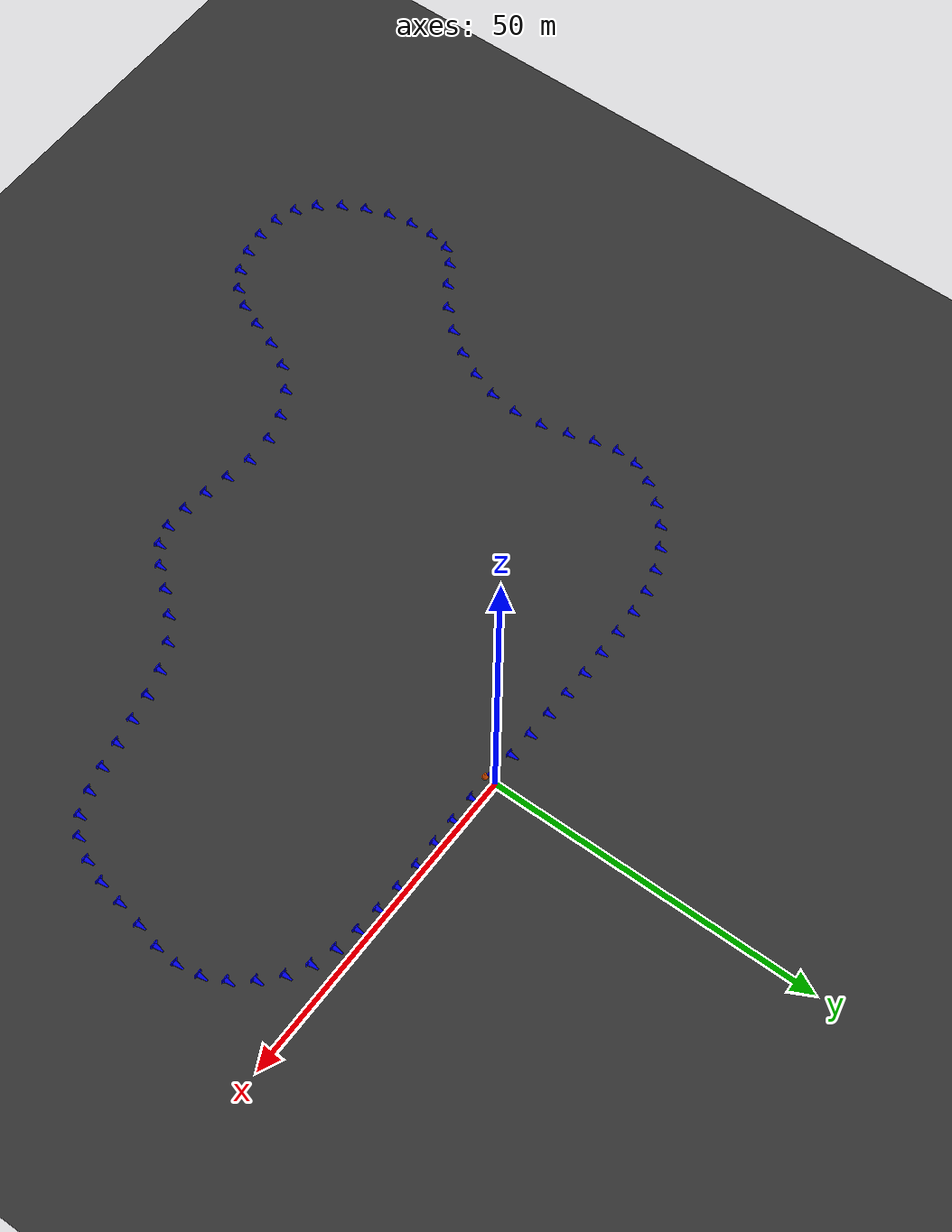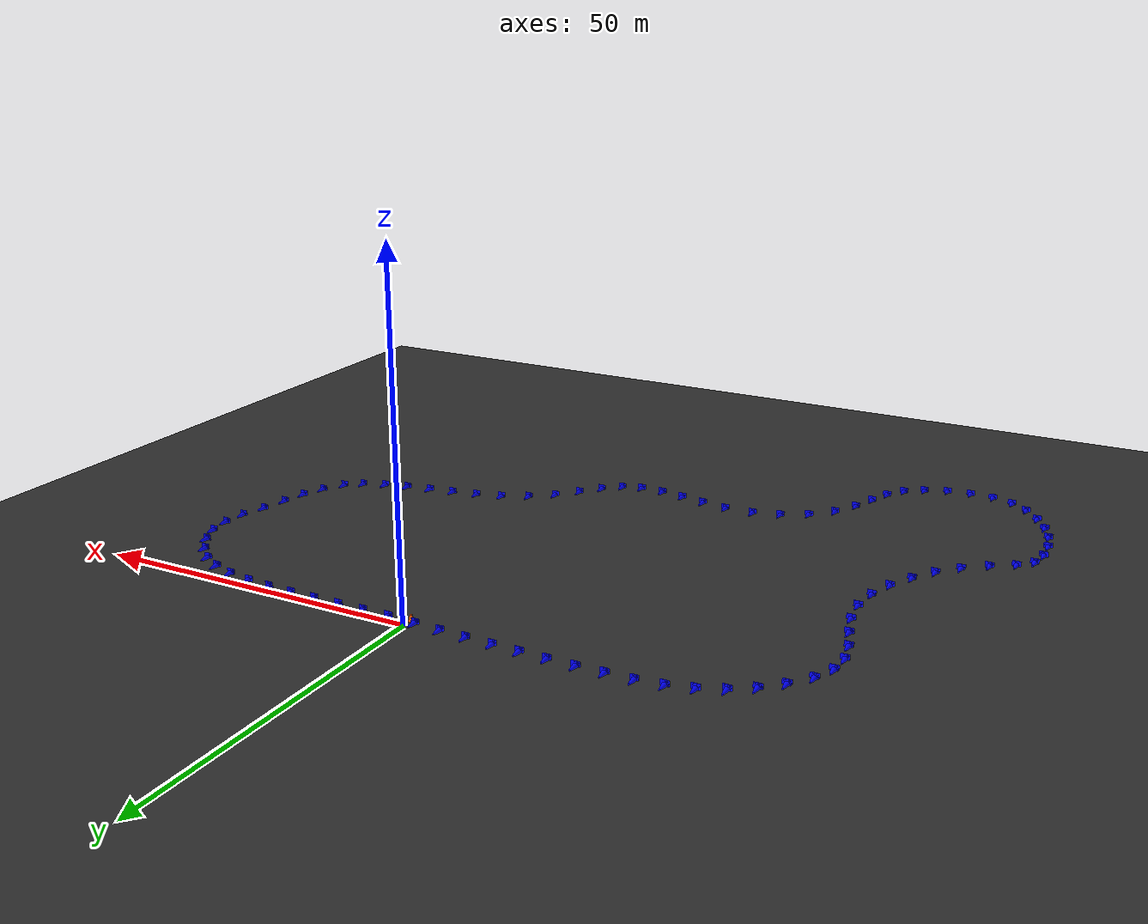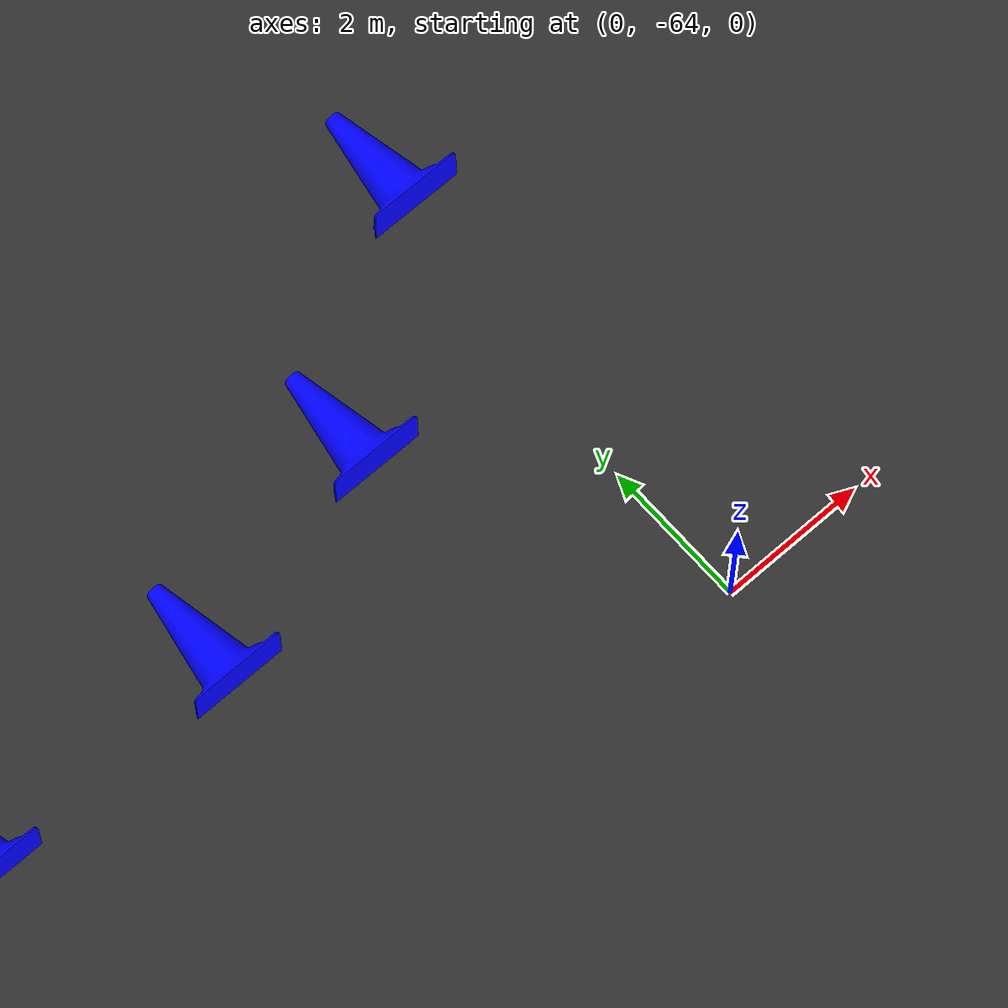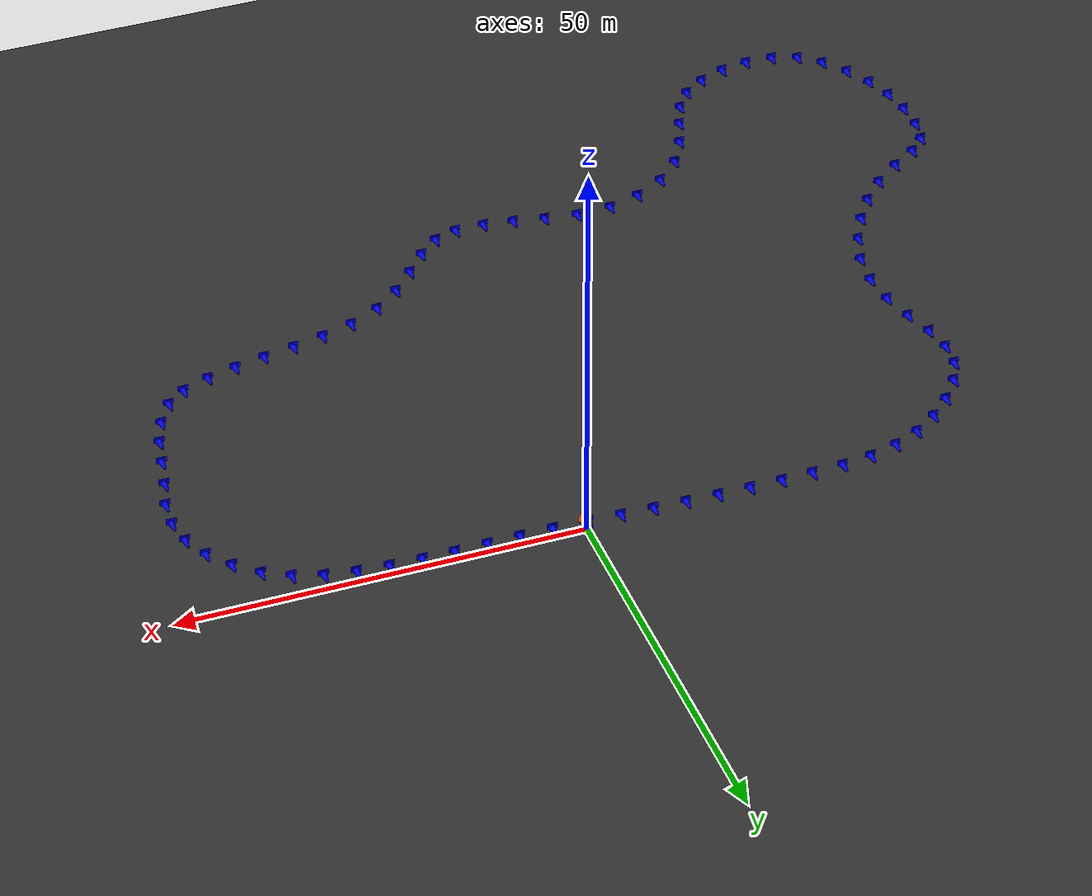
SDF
<sdf version="1.7">
 <world name="generated_world">
  <scene><sky><clouds><speed>12</speed></clouds></sky><grid>false</grid><shadows>1</shadows></scene>
  <physics type="ode">
   <max_step_size>0.001</max_step_size>
   <real_time_update_rate>1000</real_time_update_rate>
  </physics>
  <plugin filename="gz-sim-physics-system" name="gz::sim::systems::Physics"/>
  <plugin filename="gz-sim-user-commands-system" name="gz::sim::systems::UserCommands"/>
  <plugin filename="gz-sim-scene-broadcaster-system" name="gz::sim::systems::SceneBroadcaster"/>
  <plugin filename="gz-sim-contact-system" name="gz::sim::systems::Contact"/>
  <light name="sun" type="directional">
   <pose>0 0 10 0 0 0</pose>
   <diffuse>1 1 1 1</diffuse>
   <specular>0.2 0.2 0.2 1</specular>
   <direction>-0.5 0.2 -1</direction>
   <attenuation>
    <range>300</range>
    <constant>0.9</constant>
    <linear>0.01</linear>
    <quadratic>0.001</quadratic>
   </attenuation>
  </light>
  <model name="asphalt_ground">
   <static>1</static>
   <link name="link">
    <collision name="collision">
     <geometry><plane><normal>0 0 1</normal><size>300 300</size></plane></geometry>
     <surface><friction><ode><mu>100</mu><mu2>50</mu2></ode></friction></surface>
    </collision>
    <visual name="visual">
     <geometry><plane><normal>0 0 1</normal><size>300 300</size></plane></geometry>
     <material>
      <ambient>0.2 0.2 0.2 1</ambient>
      <diffuse>0.2 0.2 0.2 1</diffuse>
      <specular>0.1 0.1 0.1 1</specular>
     </material>
    </visual>
   </link>
  </model>
  <include><uri>model://cone_yellow</uri><name>cone_yellow_001</name><pose>3.652 1.924 0 0 0 0</pose></include>
  <include><uri>model://cone_yellow</uri><name>cone_yellow_002</name><pose>7.629 1.917 0 0 0 0</pose></include>
  <include><uri>model://cone_yellow</uri><name>cone_yellow_003</name><pose>11.625 1.952 0 0 0 0</pose></include>
  <include><uri>model://cone_yellow</uri><name>cone_yellow_004</name><pose>15.642 1.986 0 0 0 0</pose></include>
  <include><uri>model://cone_yellow</uri><name>cone_yellow_005</name><pose>19.684 1.963 0 0 0 0</pose></include>
  <include><uri>model://cone_yellow</uri><name>cone_yellow_006</name><pose>23.754 1.815 0 0 0 0</pose></include>
  <include><uri>model://cone_yellow</uri><name>cone_yellow_007</name><pose>27.854 1.445 0 0 0 0</pose></include>
  <include><uri>model://cone_yellow</uri><name>cone_yellow_008</name><pose>31.963 0.713 0 0 0 0</pose></include>
  <include>
   <uri>model://cone_yellow</uri>
   <name>cone_yellow_009</name>
   <pose>36.036 -0.588 0 0 0 0</pose>
  </include>
  <include>
   <uri>model://cone_yellow</uri>
   <name>cone_yellow_010</name>
   <pose>39.873 -2.700 0 0 0 0</pose>
  </include>
  <include>
   <uri>model://cone_yellow</uri>
   <name>cone_yellow_011</name>
   <pose>43.125 -5.626 0 0 0 0</pose>
  </include>
  <include>
   <uri>model://cone_yellow</uri>
   <name>cone_yellow_012</name>
   <pose>45.771 -9.038 0 0 0 0</pose>
  </include>
  <include>
   <uri>model://cone_yellow</uri>
   <name>cone_yellow_013</name>
   <pose>47.641 -13.033 0 0 0 0</pose>
  </include>
  <include>
   <uri>model://cone_yellow</uri>
   <name>cone_yellow_014</name>
   <pose>48.392 -17.434 0 0 0 0</pose>
  </include>
  <include>
   <uri>model://cone_yellow</uri>
   <name>cone_yellow_015</name>
   <pose>48.017 -21.802 0 0 0 0</pose>
  </include>
  <include>
   <uri>model://cone_yellow</uri>
   <name>cone_yellow_016</name>
   <pose>46.966 -25.795 0 0 0 0</pose>
  </include>
  <include>
   <uri>model://cone_yellow</uri>
   <name>cone_yellow_017</name>
   <pose>46.149 -29.564 0 0 0 0</pose>
  </include>
  <include>
   <uri>model://cone_yellow</uri>
   <name>cone_yellow_018</name>
   <pose>45.277 -33.598 0 0 0 0</pose>
  </include>
  <include>
   <uri>model://cone_yellow</uri>
   <name>cone_yellow_019</name>
   <pose>43.793 -37.652 0 0 0 0</pose>
  </include>
  <include>
   <uri>model://cone_yellow</uri>
   <name>cone_yellow_020</name>
   <pose>41.598 -41.347 0 0 0 0</pose>
  </include>
  <include>
   <uri>model://cone_yellow</uri>
   <name>cone_yellow_021</name>
   <pose>37.934 -44.355 0 0 0 0</pose>
  </include>
  <include>
   <uri>model://cone_yellow</uri>
   <name>cone_yellow_022</name>
   <pose>33.863 -45.938 0 0 0 0</pose>
  </include>
  <include>
   <uri>model://cone_yellow</uri>
   <name>cone_yellow_023</name>
   <pose>29.857 -46.933 0 0 0 0</pose>
  </include>
  <include>
   <uri>model://cone_yellow</uri>
   <name>cone_yellow_024</name>
   <pose>25.870 -47.703 0 0 0 0</pose>
  </include>
  <include>
   <uri>model://cone_yellow</uri>
   <name>cone_yellow_025</name>
   <pose>21.928 -48.417 0 0 0 0</pose>
  </include>
  <include>
   <uri>model://cone_yellow</uri>
   <name>cone_yellow_026</name>
   <pose>18.073 -49.209 0 0 0 0</pose>
  </include>
  <include>
   <uri>model://cone_yellow</uri>
   <name>cone_yellow_027</name>
   <pose>14.416 -50.241 0 0 0 0</pose>
  </include>
  <include>
   <uri>model://cone_yellow</uri>
   <name>cone_yellow_028</name>
   <pose>11.181 -51.786 0 0 0 0</pose>
  </include>
  <include>
   <uri>model://cone_yellow</uri>
   <name>cone_yellow_029</name>
   <pose>8.331 -54.049 0 0 0 0</pose>
  </include>
  <include>
   <uri>model://cone_yellow</uri>
   <name>cone_yellow_030</name>
   <pose>5.748 -56.854 0 0 0 0</pose>
  </include>
  <include>
   <uri>model://cone_yellow</uri>
   <name>cone_yellow_031</name>
   <pose>3.111 -59.956 0 0 0 0</pose>
  </include>
  <include>
   <uri>model://cone_yellow</uri>
   <name>cone_yellow_032</name>
   <pose>-0.276 -62.874 0 0 0 0</pose>
  </include>
  <include>
   <uri>model://cone_yellow</uri>
   <name>cone_yellow_033</name>
   <pose>-4.787 -64.365 0 0 0 0</pose>
  </include>
  <include>
   <uri>model://cone_yellow</uri>
   <name>cone_yellow_034</name>
   <pose>-9.115 -64.327 0 0 0 0</pose>
  </include>
  <include>
   <uri>model://cone_yellow</uri>
   <name>cone_yellow_035</name>
   <pose>-13.230 -63.705 0 0 0 0</pose>
  </include>
  <include>
   <uri>model://cone_yellow</uri>
   <name>cone_yellow_036</name>
   <pose>-17.165 -62.908 0 0 0 0</pose>
  </include>
  <include>
   <uri>model://cone_yellow</uri>
   <name>cone_yellow_037</name>
   <pose>-20.944 -62.311 0 0 0 0</pose>
  </include>
  <include>
   <uri>model://cone_yellow</uri>
   <name>cone_yellow_038</name>
   <pose>-24.433 -62.395 0 0 0 0</pose>
  </include>
  <include>
   <uri>model://cone_yellow</uri>
   <name>cone_yellow_039</name>
   <pose>-27.963 -63.388 0 0 0 0</pose>
  </include>
  <include>
   <uri>model://cone_yellow</uri>
   <name>cone_yellow_040</name>
   <pose>-31.055 -65.082 0 0 0 0</pose>
  </include>
  <include>
   <uri>model://cone_yellow</uri>
   <name>cone_yellow_041</name>
   <pose>-33.514 -67.540 0 0 0 0</pose>
  </include>
  <include>
   <uri>model://cone_yellow</uri>
   <name>cone_yellow_042</name>
   <pose>-35.276 -70.671 0 0 0 0</pose>
  </include>
  <include>
   <uri>model://cone_yellow</uri>
   <name>cone_yellow_043</name>
   <pose>-36.653 -74.300 0 0 0 0</pose>
  </include>
  <include>
   <uri>model://cone_yellow</uri>
   <name>cone_yellow_044</name>
   <pose>-38.279 -78.206 0 0 0 0</pose>
  </include>
  <include>
   <uri>model://cone_yellow</uri>
   <name>cone_yellow_045</name>
   <pose>-40.953 -81.861 0 0 0 0</pose>
  </include>
  <include>
   <uri>model://cone_yellow</uri>
   <name>cone_yellow_046</name>
   <pose>-44.646 -84.457 0 0 0 0</pose>
  </include>
  <include>
   <uri>model://cone_yellow</uri>
   <name>cone_yellow_047</name>
   <pose>-48.720 -86.004 0 0 0 0</pose>
  </include>
  <include>
   <uri>model://cone_yellow</uri>
   <name>cone_yellow_048</name>
   <pose>-53.001 -86.723 0 0 0 0</pose>
  </include>
  <include>
   <uri>model://cone_yellow</uri>
   <name>cone_yellow_049</name>
   <pose>-57.412 -86.499 0 0 0 0</pose>
  </include>
  <include>
   <uri>model://cone_yellow</uri>
   <name>cone_yellow_050</name>
   <pose>-61.706 -85.013 0 0 0 0</pose>
  </include>
  <include>
   <uri>model://cone_yellow</uri>
   <name>cone_yellow_051</name>
   <pose>-65.245 -82.108 0 0 0 0</pose>
  </include>
  <include>
   <uri>model://cone_yellow</uri>
   <name>cone_yellow_052</name>
   <pose>-67.822 -78.701 0 0 0 0</pose>
  </include>
  <include>
   <uri>model://cone_yellow</uri>
   <name>cone_yellow_053</name>
   <pose>-69.826 -74.926 0 0 0 0</pose>
  </include>
  <include>
   <uri>model://cone_yellow</uri>
   <name>cone_yellow_054</name>
   <pose>-71.206 -70.881 0 0 0 0</pose>
  </include>
  <include>
   <uri>model://cone_yellow</uri>
   <name>cone_yellow_055</name>
   <pose>-71.930 -66.673 0 0 0 0</pose>
  </include>
  <include>
   <uri>model://cone_yellow</uri>
   <name>cone_yellow_056</name>
   <pose>-71.989 -62.406 0 0 0 0</pose>
  </include>
  <include>
   <uri>model://cone_yellow</uri>
   <name>cone_yellow_057</name>
   <pose>-71.002 -57.839 0 0 0 0</pose>
  </include>
  <include>
   <uri>model://cone_yellow</uri>
   <name>cone_yellow_058</name>
   <pose>-67.750 -54.320 0 0 0 0</pose>
  </include>
  <include>
   <uri>model://cone_yellow</uri>
   <name>cone_yellow_059</name>
   <pose>-64.374 -52.143 0 0 0 0</pose>
  </include>
  <include>
   <uri>model://cone_yellow</uri>
   <name>cone_yellow_060</name>
   <pose>-61.411 -49.832 0 0 0 0</pose>
  </include>
  <include>
   <uri>model://cone_yellow</uri>
   <name>cone_yellow_061</name>
   <pose>-58.929 -47.133 0 0 0 0</pose>
  </include>
  <include>
   <uri>model://cone_yellow</uri>
   <name>cone_yellow_062</name>
   <pose>-56.823 -44.033 0 0 0 0</pose>
  </include>
  <include>
   <uri>model://cone_yellow</uri>
   <name>cone_yellow_063</name>
   <pose>-55.012 -40.551 0 0 0 0</pose>
  </include>
  <include>
   <uri>model://cone_yellow</uri>
   <name>cone_yellow_064</name>
   <pose>-53.829 -37.119 0 0 0 0</pose>
  </include>
  <include>
   <uri>model://cone_yellow</uri>
   <name>cone_yellow_065</name>
   <pose>-53.377 -33.541 0 0 0 0</pose>
  </include>
  <include>
   <uri>model://cone_yellow</uri>
   <name>cone_yellow_066</name>
   <pose>-53.711 -29.909 0 0 0 0</pose>
  </include>
  <include>
   <uri>model://cone_yellow</uri>
   <name>cone_yellow_067</name>
   <pose>-54.655 -26.220 0 0 0 0</pose>
  </include>
  <include>
   <uri>model://cone_yellow</uri>
   <name>cone_yellow_068</name>
   <pose>-55.826 -22.353 0 0 0 0</pose>
  </include>
  <include>
   <uri>model://cone_yellow</uri>
   <name>cone_yellow_069</name>
   <pose>-56.610 -18.094 0 0 0 0</pose>
  </include>
  <include>
   <uri>model://cone_yellow</uri>
   <name>cone_yellow_070</name>
   <pose>-56.173 -13.595 0 0 0 0</pose>
  </include>
  <include>
   <uri>model://cone_yellow</uri>
   <name>cone_yellow_071</name>
   <pose>-54.329 -9.536 0 0 0 0</pose>
  </include>
  <include>
   <uri>model://cone_yellow</uri>
   <name>cone_yellow_072</name>
   <pose>-51.590 -6.027 0 0 0 0</pose>
  </include>
  <include>
   <uri>model://cone_yellow</uri>
   <name>cone_yellow_073</name>
   <pose>-48.498 -3.112 0 0 0 0</pose>
  </include>
  <include>
   <uri>model://cone_yellow</uri>
   <name>cone_yellow_074</name>
   <pose>-44.954 -0.727 0 0 0 0</pose>
  </include>
  <include>
   <uri>model://cone_yellow</uri>
   <name>cone_yellow_075</name>
   <pose>-41.035 1.021 0 0 0 0</pose>
  </include>
  <include>
   <uri>model://cone_yellow</uri>
   <name>cone_yellow_076</name>
   <pose>-36.902 2.102 0 0 0 0</pose>
  </include>
  <include>
   <uri>model://cone_yellow</uri>
   <name>cone_yellow_077</name>
   <pose>-32.749 2.604 0 0 0 0</pose>
  </include>
  <include>
   <uri>model://cone_yellow</uri>
   <name>cone_yellow_078</name>
   <pose>-28.630 2.732 0 0 0 0</pose>
  </include>
  <include>
   <uri>model://cone_yellow</uri>
   <name>cone_yellow_079</name>
   <pose>-24.725 2.809 0 0 0 0</pose>
  </include>
  <include>
   <uri>model://cone_yellow</uri>
   <name>cone_yellow_080</name>
   <pose>-20.642 2.807 0 0 0 0</pose>
  </include>
  <include>
   <uri>model://cone_yellow</uri>
   <name>cone_yellow_081</name>
   <pose>-16.613 2.729 0 0 0 0</pose>
  </include>
  <include>
   <uri>model://cone_yellow</uri>
   <name>cone_yellow_082</name>
   <pose>-12.584 2.610 0 0 0 0</pose>
  </include>
  <include><uri>model://cone_yellow</uri><name>cone_yellow_083</name><pose>-8.563 2.462 0 0 0 0</pose></include>
  <include><uri>model://cone_yellow</uri><name>cone_yellow_084</name><pose>-4.525 2.289 0 0 0 0</pose></include>
  <include><uri>model://cone_yellow</uri><name>cone_yellow_085</name><pose>-0.503 2.090 0 0 0 0</pose></include>
  <include><uri>model://cone_blue</uri><name>cone_blue_001</name><pose>3.615 -1.576 0 0 0 0</pose></include>
  <include><uri>model://cone_blue</uri><name>cone_blue_002</name><pose>7.648 -1.583 0 0 0 0</pose></include>
  <include><uri>model://cone_blue</uri><name>cone_blue_003</name><pose>11.662 -1.547 0 0 0 0</pose></include>
  <include><uri>model://cone_blue</uri><name>cone_blue_004</name><pose>15.655 -1.514 0 0 0 0</pose></include>
  <include><uri>model://cone_blue</uri><name>cone_blue_005</name><pose>19.622 -1.536 0 0 0 0</pose></include>
  <include><uri>model://cone_blue</uri><name>cone_blue_006</name><pose>23.549 -1.679 0 0 0 0</pose></include>
  <include><uri>model://cone_blue</uri><name>cone_blue_007</name><pose>27.412 -2.027 0 0 0 0</pose></include>
  <include><uri>model://cone_blue</uri><name>cone_blue_008</name><pose>31.155 -2.693 0 0 0 0</pose></include>
  <include><uri>model://cone_blue</uri><name>cone_blue_009</name><pose>34.689 -3.819 0 0 0 0</pose></include>
  <include><uri>model://cone_blue</uri><name>cone_blue_010</name><pose>37.838 -5.547 0 0 0 0</pose></include>
  <include><uri>model://cone_blue</uri><name>cone_blue_011</name><pose>40.565 -8.013 0 0 0 0</pose></include>
  <include><uri>model://cone_blue</uri><name>cone_blue_012</name><pose>42.805 -10.896 0 0 0 0</pose></include>
  <include><uri>model://cone_blue</uri><name>cone_blue_013</name><pose>44.305 -14.093 0 0 0 0</pose></include>
  <include><uri>model://cone_blue</uri><name>cone_blue_014</name><pose>44.894 -17.549 0 0 0 0</pose></include>
  <include><uri>model://cone_blue</uri><name>cone_blue_015</name><pose>44.581 -21.135 0 0 0 0</pose></include>
  <include><uri>model://cone_blue</uri><name>cone_blue_016</name><pose>43.586 -24.886 0 0 0 0</pose></include>
  <include><uri>model://cone_blue</uri><name>cone_blue_017</name><pose>42.709 -28.914 0 0 0 0</pose></include>
  <include><uri>model://cone_blue</uri><name>cone_blue_018</name><pose>41.898 -32.686 0 0 0 0</pose></include>
  <include><uri>model://cone_blue</uri><name>cone_blue_019</name><pose>40.634 -36.144 0 0 0 0</pose></include>
  <include><uri>model://cone_blue</uri><name>cone_blue_020</name><pose>38.749 -39.315 0 0 0 0</pose></include>
  <include><uri>model://cone_blue</uri><name>cone_blue_021</name><pose>36.321 -41.249 0 0 0 0</pose></include>
  <include><uri>model://cone_blue</uri><name>cone_blue_022</name><pose>32.866 -42.583 0 0 0 0</pose></include>
  <include><uri>model://cone_blue</uri><name>cone_blue_023</name><pose>29.132 -43.509 0 0 0 0</pose></include>
  <include><uri>model://cone_blue</uri><name>cone_blue_024</name><pose>25.247 -44.259 0 0 0 0</pose></include>
  <include><uri>model://cone_blue</uri><name>cone_blue_025</name><pose>21.286 -44.976 0 0 0 0</pose></include>
  <include><uri>model://cone_blue</uri><name>cone_blue_026</name><pose>17.279 -45.800 0 0 0 0</pose></include>
  <include><uri>model://cone_blue</uri><name>cone_blue_027</name><pose>13.258 -46.938 0 0 0 0</pose></include>
  <include><uri>model://cone_blue</uri><name>cone_blue_028</name><pose>9.292 -48.840 0 0 0 0</pose></include>
  <include><uri>model://cone_blue</uri><name>cone_blue_029</name><pose>5.914 -51.517 0 0 0 0</pose></include>
  <include><uri>model://cone_blue</uri><name>cone_blue_030</name><pose>3.071 -54.599 0 0 0 0</pose></include>
  <include><uri>model://cone_blue</uri><name>cone_blue_031</name><pose>0.526 -57.595 0 0 0 0</pose></include>
  <include><uri>model://cone_blue</uri><name>cone_blue_032</name><pose>-2.103 -59.889 0 0 0 0</pose></include>
  <include><uri>model://cone_blue</uri><name>cone_blue_033</name><pose>-5.119 -60.881 0 0 0 0</pose></include>
  <include><uri>model://cone_blue</uri><name>cone_blue_034</name><pose>-8.779 -60.843 0 0 0 0</pose></include>
  <include><uri>model://cone_blue</uri><name>cone_blue_035</name><pose>-12.572 -60.268 0 0 0 0</pose></include>
  <include><uri>model://cone_blue</uri><name>cone_blue_036</name><pose>-16.486 -59.475 0 0 0 0</pose></include>
  <include><uri>model://cone_blue</uri><name>cone_blue_037</name><pose>-20.611 -58.826 0 0 0 0</pose></include>
  <include><uri>model://cone_blue</uri><name>cone_blue_038</name><pose>-25.080 -58.955 0 0 0 0</pose></include>
  <include><uri>model://cone_blue</uri><name>cone_blue_039</name><pose>-29.249 -60.133 0 0 0 0</pose></include>
  <include><uri>model://cone_blue</uri><name>cone_blue_040</name><pose>-33.140 -62.271 0 0 0 0</pose></include>
  <include><uri>model://cone_blue</uri><name>cone_blue_041</name><pose>-36.319 -65.447 0 0 0 0</pose></include>
  <include><uri>model://cone_blue</uri><name>cone_blue_042</name><pose>-38.486 -69.277 0 0 0 0</pose></include>
  <include><uri>model://cone_blue</uri><name>cone_blue_043</name><pose>-39.947 -73.118 0 0 0 0</pose></include>
  <include><uri>model://cone_blue</uri><name>cone_blue_044</name><pose>-41.384 -76.590 0 0 0 0</pose></include>
  <include><uri>model://cone_blue</uri><name>cone_blue_045</name><pose>-43.396 -79.355 0 0 0 0</pose></include>
  <include><uri>model://cone_blue</uri><name>cone_blue_046</name><pose>-46.229 -81.335 0 0 0 0</pose></include>
  <include><uri>model://cone_blue</uri><name>cone_blue_047</name><pose>-49.631 -82.625 0 0 0 0</pose></include>
  <include><uri>model://cone_blue</uri><name>cone_blue_048</name><pose>-53.230 -83.230 0 0 0 0</pose></include>
  <include><uri>model://cone_blue</uri><name>cone_blue_049</name><pose>-56.795 -83.053 0 0 0 0</pose></include>
  <include><uri>model://cone_blue</uri><name>cone_blue_050</name><pose>-60.021 -81.945 0 0 0 0</pose></include>
  <include><uri>model://cone_blue</uri><name>cone_blue_051</name><pose>-62.630 -79.781 0 0 0 0</pose></include>
  <include><uri>model://cone_blue</uri><name>cone_blue_052</name><pose>-64.871 -76.818 0 0 0 0</pose></include>
  <include><uri>model://cone_blue</uri><name>cone_blue_053</name><pose>-66.614 -73.536 0 0 0 0</pose></include>
  <include><uri>model://cone_blue</uri><name>cone_blue_054</name><pose>-67.814 -70.018 0 0 0 0</pose></include>
  <include><uri>model://cone_blue</uri><name>cone_blue_055</name><pose>-68.445 -66.352 0 0 0 0</pose></include>
  <include><uri>model://cone_blue</uri><name>cone_blue_056</name><pose>-68.496 -62.630 0 0 0 0</pose></include>
  <include><uri>model://cone_blue</uri><name>cone_blue_057</name><pose>-67.862 -59.386 0 0 0 0</pose></include>
  <include><uri>model://cone_blue</uri><name>cone_blue_058</name><pose>-65.752 -57.194 0 0 0 0</pose></include>
  <include><uri>model://cone_blue</uri><name>cone_blue_059</name><pose>-62.425 -55.050 0 0 0 0</pose></include>
  <include><uri>model://cone_blue</uri><name>cone_blue_060</name><pose>-59.039 -52.405 0 0 0 0</pose></include>
  <include><uri>model://cone_blue</uri><name>cone_blue_061</name><pose>-56.175 -49.293 0 0 0 0</pose></include>
  <include><uri>model://cone_blue</uri><name>cone_blue_062</name><pose>-53.811 -45.815 0 0 0 0</pose></include>
  <include><uri>model://cone_blue</uri><name>cone_blue_063</name><pose>-51.816 -41.979 0 0 0 0</pose></include>
  <include><uri>model://cone_blue</uri><name>cone_blue_064</name><pose>-50.425 -37.934 0 0 0 0</pose></include>
  <include><uri>model://cone_blue</uri><name>cone_blue_065</name><pose>-49.877 -33.588 0 0 0 0</pose></include>
  <include><uri>model://cone_blue</uri><name>cone_blue_066</name><pose>-50.272 -29.262 0 0 0 0</pose></include>
  <include><uri>model://cone_blue</uri><name>cone_blue_067</name><pose>-51.306 -25.204 0 0 0 0</pose></include>
  <include><uri>model://cone_blue</uri><name>cone_blue_068</name><pose>-52.451 -21.426 0 0 0 0</pose></include>
  <include><uri>model://cone_blue</uri><name>cone_blue_069</name><pose>-53.118 -17.859 0 0 0 0</pose></include>
  <include><uri>model://cone_blue</uri><name>cone_blue_070</name><pose>-52.799 -14.527 0 0 0 0</pose></include>
  <include><uri>model://cone_blue</uri><name>cone_blue_071</name><pose>-51.376 -11.415 0 0 0 0</pose></include>
  <include><uri>model://cone_blue</uri><name>cone_blue_072</name><pose>-49.005 -8.386 0 0 0 0</pose></include>
  <include><uri>model://cone_blue</uri><name>cone_blue_073</name><pose>-46.305 -5.840 0 0 0 0</pose></include>
  <include><uri>model://cone_blue</uri><name>cone_blue_074</name><pose>-43.257 -3.788 0 0 0 0</pose></include>
  <include><uri>model://cone_blue</uri><name>cone_blue_075</name><pose>-39.886 -2.285 0 0 0 0</pose></include>
  <include><uri>model://cone_blue</uri><name>cone_blue_076</name><pose>-36.271 -1.341 0 0 0 0</pose></include>
  <include><uri>model://cone_blue</uri><name>cone_blue_077</name><pose>-32.517 -0.889 0 0 0 0</pose></include>
  <include><uri>model://cone_blue</uri><name>cone_blue_078</name><pose>-28.598 -0.767 0 0 0 0</pose></include>
  <include><uri>model://cone_blue</uri><name>cone_blue_079</name><pose>-24.668 -0.691 0 0 0 0</pose></include>
  <include><uri>model://cone_blue</uri><name>cone_blue_080</name><pose>-20.685 -0.692 0 0 0 0</pose></include>
  <include><uri>model://cone_blue</uri><name>cone_blue_081</name><pose>-16.701 -0.770 0 0 0 0</pose></include>
  <include><uri>model://cone_blue</uri><name>cone_blue_082</name><pose>-12.701 -0.888 0 0 0 0</pose></include>
  <include><uri>model://cone_blue</uri><name>cone_blue_083</name><pose>-8.702 -1.035 0 0 0 0</pose></include>
  <include><uri>model://cone_blue</uri><name>cone_blue_084</name><pose>-4.685 -1.207 0 0 0 0</pose></include>
  <include><uri>model://cone_blue</uri><name>cone_blue_085</name><pose>-0.691 -1.404 0 0 0 0</pose></include>
  <include>
   <uri>model://cone_orange_big</uri>
   <name>cone_orange_big_001</name>
   <pose>0.000 -1.726 0 0 0 0</pose>
  </include>
  <include>
   <uri>model://cone_orange_big</uri>
   <name>cone_orange_big_002</name>
   <pose>0.000 1.726 0 0 0 0</pose>
  </include>
 </world>
</sdf>

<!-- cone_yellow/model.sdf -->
<sdf version="1.6">
  <model name="cone_yellow">
    <static>1</static>
    <link name="link">

      <visual name="visual">
        <pose>0 0 0 0 0 0</pose>
        <geometry>
          <mesh>
            <uri>model://cone_yellow/meshes/cone.stl</uri>
            <scale>0.005 0.005 0.005</scale>
          </mesh>
        </geometry>
        <material>
          <ambient>1.0 1.0 0.0 1</ambient>
          <diffuse>1.0 1.0 0.0 1</diffuse>
        </material>
      </visual>

      <collision name="collision">
        <pose>0 0 0.15 0 0 0</pose>
        <geometry>
          <cylinder>
            <radius>0.1</radius>
            <length>0.3</length>
          </cylinder>
        </geometry>
        <surface>
          <friction>
            <ode>
              <mu>0.9</mu> <mu2>0.9</mu2> </ode>
          </friction>
        </surface>
      </collision>

      <inertial>
        <pose>0 0 0.05 0 0 0</pose>
        <mass>1</mass>
        <inertia>
          <ixx>0.01</ixx> <iyy>0.01</iyy> <izz>0.005</izz>
          <ixy>0.0</ixy> <ixz>0.0</ixz> <iyz>0.0</iyz>
        </inertia>
      </inertial>

    </link>
  </model>
</sdf>

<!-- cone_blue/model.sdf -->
<sdf version="1.6">
  <model name="cone_blue">
    <static>1</static>
    <link name="link">

      <inertial>
        <pose>0 0 0.05 0 0 0</pose> <mass>1</mass>
        <inertia>
          <ixx>0.01</ixx> <iyy>0.01</iyy> <izz>0.005</izz>
          <ixy>0.0</ixy> <ixz>0.0</ixz> <iyz>0.0</iyz>
        </inertia>
      </inertial>

      <collision name="collision">
        <pose>0 0 0.15 0 0 0</pose>
        <geometry>
          <cylinder>
            <radius>0.1</radius>
            <length>0.3</length>
          </cylinder>
        </geometry>
      </collision>

      <visual name="visual">
        <pose>0 0 0 0 0 0</pose>
        <geometry>
          <mesh>
            <uri>model://cone_blue/meshes/cone.stl</uri>
            <scale>0.005 0.005 0.005</scale>
          </mesh>
        </geometry>
        <material>
          <ambient>0.0 0.0 1.0 1</ambient>
          <diffuse>0.0 0.0 1.0 1</diffuse>
        </material>
      </visual>

    </link>
  </model>
</sdf>

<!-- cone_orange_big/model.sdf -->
<sdf version="1.6">
  <model name="cone_orange_big">
    <static>1</static>
    <link name="link">
      <visual name="visual">
        <geometry>
          <mesh>
            <uri>model://cone_orange_big/meshes/cone.stl</uri>
            <scale>0.0112 0.0112 0.0112</scale>
          </mesh>
        </geometry>
        <material>
          <ambient>1.0 0.35 0.0 1</ambient>
	  <diffuse>1.0 0.35 0.0 1</diffuse>
        </material>
      </visual>
      <collision name="collision">
        <geometry>
          <mesh>
            <uri>model://cone_orange_big/meshes/cone.stl</uri>
            <scale>0.0112 0.0112 0.0112</scale>
          </mesh>
        </geometry>
      </collision>
      <inertial>
        <mass>0.1</mass>
        <inertia>
          <ixx>0.0001</ixx>
          <iyy>0.0001</iyy>
          <izz>0.0001</izz>
          <ixy>0.0</ixy>
          <ixz>0.0</ixz>
          <iyz>0.0</iyz>
        </inertia>
      </inertial>
    </link>
  </model>
</sdf>
